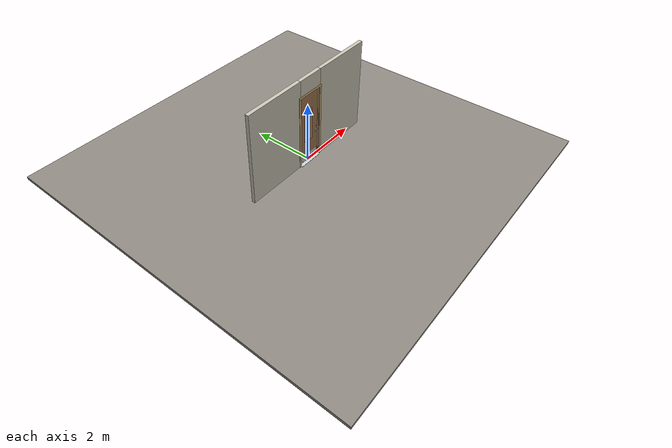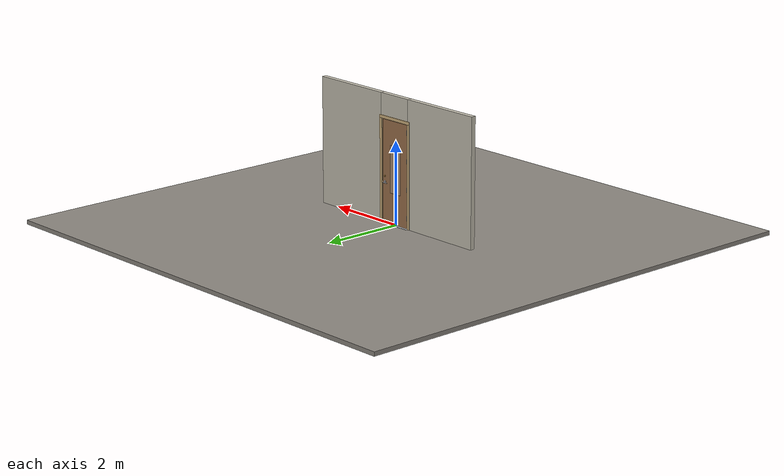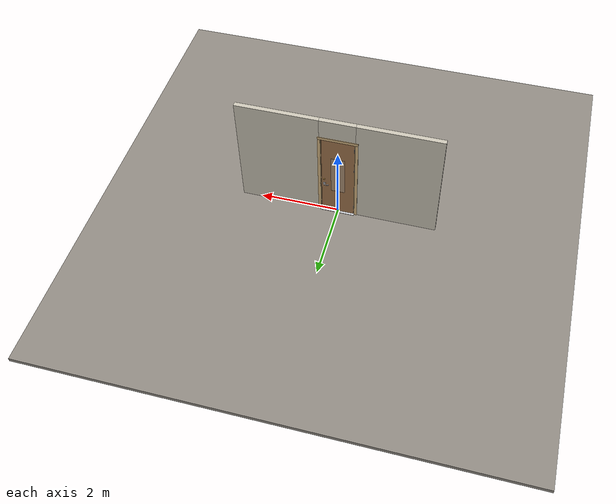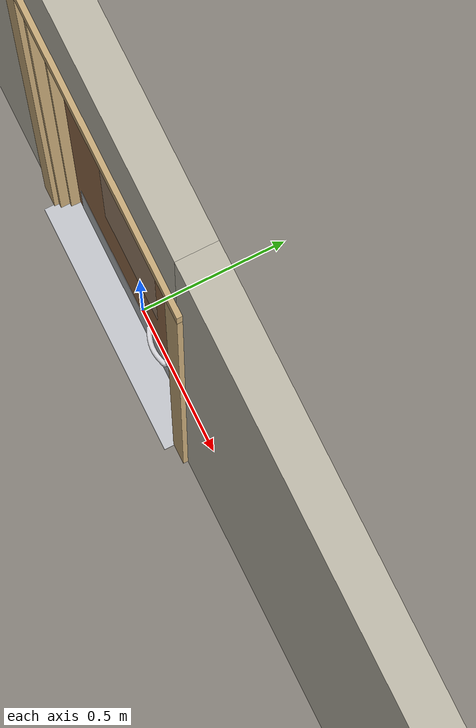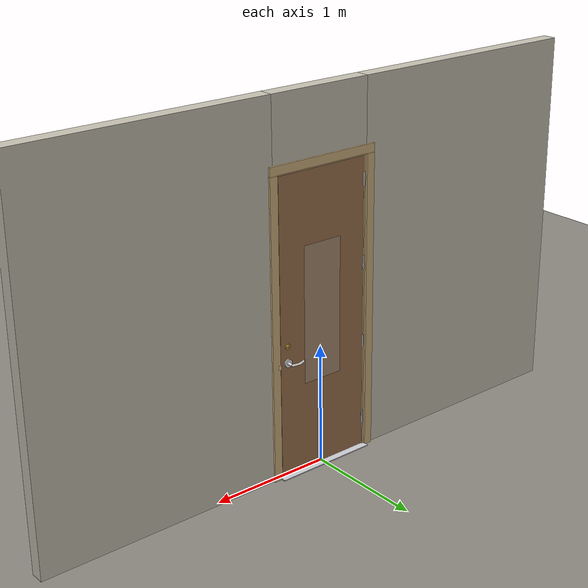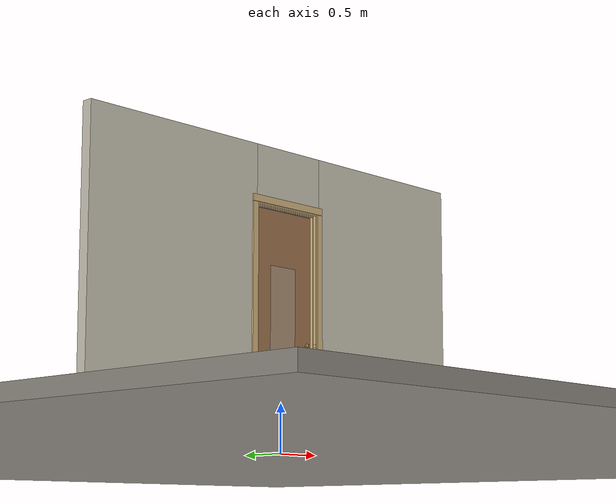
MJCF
<?xml version="1.0" ?>
<mujoco model="db0948_swing_single_full">
  <compiler angle="radian" meshdir="../../hardware" texturedir="../../textures" autolimits="true" inertiafromgeom="false"/>
  <option timestep="0.002" integrator="implicitfast" cone="elliptic" impratio="10" noslip_iterations="3">
    <flag multiccd="enable"/>
  </option>
  <size memory="16M"/>
  <default>
    <geom condim="4" solref="0.005 1" solimp="0.95 0.99 0.001"/>
    <joint solreflimit="0.005 1" solimplimit="0.95 0.99 0.001"/>
    <tendon solreflimit="0.005 1"/>
    <equality solref="0.002 1"/>
  </default>
  <visual>
    <headlight ambient="0.4 0.4 0.4" diffuse="0.7 0.7 0.7" specular="0.2 0.2 0.2"/>
    <quality shadowsize="4096"/>
    <map znear="0.01" zfar="60"/>
  </visual>
  <asset>
    <mesh name="cyl_face_e9e5036966" file="cyl_face_e9e5036966.obj"/>
    <mesh name="hinge_e22b26c0c1" file="hinge_e22b26c0c1.obj"/>
    <mesh name="hinge_jamb_e1d088f8dc" file="hinge_jamb_e1d088f8dc.obj"/>
    <mesh name="lever_748f08efca" file="lever_748f08efca.obj"/>
    <mesh name="thumbturn_eb5c9899a3" file="thumbturn_eb5c9899a3.obj"/>
    <material name="mat_floor" rgba="0.55 0.53 0.5 1" specular="0.2" shininess="0.15" reflectance="0"/>
    <material name="mat_wall" rgba="0.78 0.76 0.7 1" specular="0.2" shininess="0.1" reflectance="0"/>
    <material name="mat_leaf" rgba="0.62 0.45 0.3 1" specular="0.2" shininess="0.5" reflectance="0"/>
    <material name="mat_glass" rgba="0.85 0.92 0.95 0.25" specular="0.2" shininess="0.95" reflectance="0.1"/>
    <material name="mat_hinge" rgba="0.65 0.66 0.68 1" specular="0.74" shininess="0.5" reflectance="0.36"/>
    <material name="mat_op_chrome" rgba="0.9 0.9 0.92 1" specular="0.8" shininess="0.9" reflectance="0.4"/>
    <material name="mat_trim" rgba="0.85 0.66 0.3 1" specular="0.8" shininess="0.75" reflectance="0.4"/>
    <material name="mat_bolt" rgba="0.85 0.66 0.3 1" specular="0.8" shininess="0.75" reflectance="0.4"/>
    <material name="mat_deadbolt" rgba="0.85 0.66 0.3 1" specular="0.8" shininess="0.75" reflectance="0.4"/>
    <material name="mat_frame" rgba="0.82 0.7 0.5 1" specular="0.2" shininess="0.45" reflectance="0"/>
    <material name="mat_seal" rgba="0.1 0.1 0.1 1" specular="0.2" shininess="0.1" reflectance="0"/>
    <material name="mat_threshold" rgba="0.8 0.81 0.83 1" specular="0.8" shininess="0.6" reflectance="0.4"/>
    <material name="mat_kick" rgba="0.75 0.76 0.77 1" specular="0.8" shininess="0.65" reflectance="0.4"/>
    <texture name="skybox" type="skybox" builtin="gradient" rgb1="0.6 0.7 0.85" rgb2="0.9 0.92 0.95" width="256" height="256"/>
  </asset>
  <worldbody>
    <light name="sun" pos="1.5 -2.5 4" dir="-0.3 0.5 -0.8" directional="true" diffuse="0.8 0.8 0.8" specular="0.3 0.3 0.3" castshadow="true"/>
    <light name="fill" pos="-1.5 2.5 3" dir="0.3 -0.5 -0.7" directional="true" diffuse="0.35 0.35 0.4" castshadow="false"/>
    <camera name="robot_view" pos="0 -2.951313 2.043887" xyaxes="1 0 0 0 0.26963 0.962964" fovy="52"/>
    <camera name="far_view" pos="0 2.894312 2.043887" xyaxes="-1 0 0 0 -0.26963 0.962964" fovy="52"/>
    <camera name="iso" pos="2.221337 -2.483663 2.511538" xyaxes="0.741536 0.670913 0 -0.242917 0.268487 0.932151" fovy="46"/>
    <camera name="detail_handle" pos="0.4259 -0.877 1.245" xyaxes="0.97561 0.219512 0 -0.070934 0.315262 0.94635" fovy="38"/>
    <geom name="floor" type="box" size="6 6 0.05" pos="0 0 -0.05" material="mat_floor" group="0" contype="1" conaffinity="1" friction="0.8 0.005 0.0001" density="2400"/>
    <geom name="wall_left" type="box" size="1.03525 0.0575 1.5255" pos="-1.46475 -0.0285 1.5255" material="mat_wall" group="0" contype="1" conaffinity="1" friction="0.6 0.005 0.0001" density="800"/>
    <geom name="wall_right" type="box" size="1.02025 0.0575 1.5255" pos="1.47975 -0.0285 1.5255" material="mat_wall" group="0" contype="1" conaffinity="1" friction="0.6 0.005 0.0001" density="800"/>
    <geom name="wall_header" type="box" size="0.4445 0.0575 0.2755" pos="0.015 -0.0285 2.7755" material="mat_wall" group="0" contype="1" conaffinity="1" friction="0.6 0.005 0.0001" density="800"/>
    <geom name="hinge_0_jamb" type="mesh" mesh="hinge_jamb_e1d088f8dc" pos="-0.4075 0.029 0.259" quat="0 1 0 0" material="mat_hinge" group="1" contype="0" conaffinity="0" density="7850"/>
    <geom name="hinge_1_jamb" type="mesh" mesh="hinge_jamb_e1d088f8dc" pos="-0.4075 0.029 0.928333" quat="0 1 0 0" material="mat_hinge" group="1" contype="0" conaffinity="0" density="7850"/>
    <geom name="hinge_2_jamb" type="mesh" mesh="hinge_jamb_e1d088f8dc" pos="-0.4075 0.029 1.597667" quat="0 1 0 0" material="mat_hinge" group="1" contype="0" conaffinity="0" density="7850"/>
    <geom name="hinge_3_jamb" type="mesh" mesh="hinge_jamb_e1d088f8dc" pos="-0.4075 0.029 2.267" quat="0 1 0 0" material="mat_hinge" group="1" contype="0" conaffinity="0" density="7850"/>
    <geom name="leaf_deadbolt_strike_b" type="box" size="0.0155 0.003 0.0005" pos="0.41 0 1.0865" quat="-0.5 -0.5 0.5 0.5" material="mat_deadbolt" group="1" contype="0" conaffinity="0" density="7800"/>
    <geom name="leaf_deadbolt_strike_l" type="box" size="0.003 0.0155 0.0005" pos="0.41 0.0125 1.105" quat="-0.5 -0.5 0.5 0.5" material="mat_deadbolt" group="1" contype="0" conaffinity="0" density="7800"/>
    <geom name="leaf_deadbolt_strike_t" type="box" size="0.0155 0.003 0.0005" pos="0.41 0 1.1235" quat="-0.5 -0.5 0.5 0.5" material="mat_deadbolt" group="1" contype="0" conaffinity="0" density="7800"/>
    <geom name="leaf_deadbolt_strike_r" type="box" size="0.003 0.0155 0.0005" pos="0.41 -0.0125 1.105" quat="-0.5 -0.5 0.5 0.5" material="mat_deadbolt" group="1" contype="0" conaffinity="0" density="7800"/>
    <geom name="jamb_hinge" type="box" size="0.0095 0.0575 1.2255" pos="-0.42 -0.0285 1.2255" material="mat_frame" group="0" contype="1" conaffinity="1" friction="0.6 0.005 0.0001" density="400"/>
    <geom name="strike_965_wall_n" type="box" size="0.0245 0.039075 0.0167" pos="0.435 -0.046925 0.965" material="mat_frame" group="0" contype="1" conaffinity="1" friction="0.6 0.005 0.0001" density="400"/>
    <geom name="strike_965_wall_p" type="box" size="0.0245 0.008 0.0167" pos="0.435 0.01585 0.965" material="mat_frame" group="0" contype="1" conaffinity="1" friction="0.6 0.005 0.0001" density="400"/>
    <geom name="strike_965_ramp" type="box" size="0.0245 0.01649 0.0167" pos="0.439636 0.028673 0.965" quat="0.977148 0 0 -0.212558" material="mat_frame" group="0" contype="1" conaffinity="1" friction="0.12 0.005 0.0001" density="400"/>
    <geom name="strike_965_back" type="box" size="0.01615 0.00785 0.0167" pos="0.44335 0 0.965" material="mat_frame" group="0" contype="1" conaffinity="1" friction="0.6 0.005 0.0001" density="400"/>
    <geom name="strike_1105_wall_n" type="box" size="0.0245 0.03825 0.0155" pos="0.435 -0.04775 1.105" material="mat_frame" group="0" contype="1" conaffinity="1" friction="0.6 0.005 0.0001" density="400"/>
    <geom name="strike_1105_wall_p" type="box" size="0.0245 0.00975 0.0155" pos="0.435 0.01925 1.105" material="mat_frame" group="0" contype="1" conaffinity="1" friction="0.6 0.005 0.0001" density="400"/>
    <geom name="strike_1105_back" type="box" size="0.0098 0.0095 0.0155" pos="0.4497 0 1.105" material="mat_frame" group="0" contype="1" conaffinity="1" friction="0.6 0.005 0.0001" density="400"/>
    <geom name="jamb_strike_0" type="box" size="0.0245 0.0575 0.47415" pos="0.435 -0.0285 0.47415" material="mat_frame" group="0" contype="1" conaffinity="1" friction="0.6 0.005 0.0001" density="400"/>
    <geom name="jamb_strike_1" type="box" size="0.0245 0.0575 0.0539" pos="0.435 -0.0285 1.0356" material="mat_frame" group="0" contype="1" conaffinity="1" friction="0.6 0.005 0.0001" density="400"/>
    <geom name="jamb_strike_2" type="box" size="0.0245 0.0575 0.66525" pos="0.435 -0.0285 1.78575" material="mat_frame" group="0" contype="1" conaffinity="1" friction="0.6 0.005 0.0001" density="400"/>
    <geom name="jamb_head" type="box" size="0.4445 0.0575 0.0095" pos="0.015 -0.0285 2.4605" material="mat_frame" group="0" contype="1" conaffinity="1" friction="0.6 0.005 0.0001" density="400"/>
    <geom name="head_stud" type="box" size="0.4445 0.0575 0.015" pos="0.015 -0.0285 2.485" material="mat_wall" group="0" contype="1" conaffinity="1" friction="0.6 0.005 0.0001" density="500"/>
    <geom name="stop_hinge" type="box" size="0.0055 0.016 1.2255" pos="-0.405 -0.0385 1.2255" material="mat_frame" group="0" contype="1" conaffinity="1" friction="0.6 0.005 0.0001" density="400"/>
    <geom name="stop_strike" type="box" size="0.0055 0.016 1.2255" pos="0.405 -0.0385 1.2255" material="mat_frame" group="0" contype="1" conaffinity="1" friction="0.6 0.005 0.0001" density="400"/>
    <geom name="stop_head" type="box" size="0.4105 0.016 0.0055" pos="0 -0.0385 2.4455" material="mat_frame" group="0" contype="1" conaffinity="1" friction="0.6 0.005 0.0001" density="400"/>
    <geom name="seal_hinge" type="box" size="0.004 0.003 1.2255" pos="-0.4075 -0.025 1.2255" material="mat_seal" group="1" contype="0" conaffinity="0" density="1100"/>
    <geom name="seal_strike" type="box" size="0.004 0.003 1.2255" pos="0.4075 -0.025 1.2255" material="mat_seal" group="1" contype="0" conaffinity="0" density="1100"/>
    <geom name="seal_head" type="box" size="0.3905 0.003 0.008" pos="0 -0.025 2.439" material="mat_seal" group="1" contype="0" conaffinity="0" density="1100"/>
    <geom name="casing_l_n" type="box" size="0.035 0.008 1.235" pos="-0.4595 -0.094 1.2255" material="mat_frame" group="2" contype="0" conaffinity="0" density="400"/>
    <geom name="casing_r_n" type="box" size="0.035 0.008 1.235" pos="0.4595 -0.094 1.2255" material="mat_frame" group="2" contype="0" conaffinity="0" density="400"/>
    <geom name="casing_h_n" type="box" size="0.4945 0.008 0.035" pos="0 -0.094 2.5" material="mat_frame" group="2" contype="0" conaffinity="0" density="400"/>
    <geom name="casing_l_p" type="box" size="0.035 0.008 1.235" pos="-0.4595 0.037 1.2255" material="mat_frame" group="2" contype="0" conaffinity="0" density="400"/>
    <geom name="casing_r_p" type="box" size="0.035 0.008 1.235" pos="0.4595 0.037 1.2255" material="mat_frame" group="2" contype="0" conaffinity="0" density="400"/>
    <geom name="casing_h_p" type="box" size="0.4945 0.008 0.035" pos="0 0.037 2.5" material="mat_frame" group="2" contype="0" conaffinity="0" density="400"/>
    <geom name="threshold" type="box" size="0.4295 0.1075 0.004" pos="0 -0.0285 0.004" material="mat_threshold" group="0" contype="1" conaffinity="1" friction="0.6 0.005 0.0001" density="2700"/>
    <site name="approach_point" pos="0 -1.5 0" quat="1 0 0 0" size="0.05" rgba="0.2 0.9 0.2 0.5" group="4"/>
    <site name="goal_point" pos="0 1.5 0" quat="1 0 0 0" size="0.05" rgba="0.2 0.9 0.2 0.5" group="4"/>
    <site name="door_plane_center" pos="0 0 1.2255" quat="1 0 0 0" size="0.02" rgba="0.2 0.9 0.2 0.5" group="4"/>
    <body name="leaf" pos="-0.4105 0 0">
      <inertial pos="0.402926 -0.000648 1.179156" mass="57.306147" quat="0.500385 0.500373 0.498582 -0.500657" diaginertia="3.270067281 30.032979014 33.282040839"/>
      <joint name="leaf_hinge" type="hinge" axis="0 0 1" pos="0.003 0.029 0" limited="true" range="0 1.745329" solreflimit="0.02 1" damping="0.242359" frictionloss="3.136838" armature="0.02"/>
      <geom name="leaf_slab" type="box" size="0.4065 0.022 1.219" pos="0.4095 0 1.228" material="mat_leaf" group="0" contype="1" conaffinity="1" friction="0.4 0.005 0.0001" density="1"/>
      <geom name="leaf_glass_0" type="box" size="0.174075 0.0228 0.563178" pos="0.4095 0 1.303578" material="mat_glass" group="1" contype="0" conaffinity="0" density="1"/>
      <geom name="hinge_0" type="mesh" mesh="hinge_e22b26c0c1" pos="0.003 0.029 0.259" quat="0 1 0 0" material="mat_hinge" group="1" contype="0" conaffinity="0" density="7850"/>
      <geom name="hinge_1" type="mesh" mesh="hinge_e22b26c0c1" pos="0.003 0.029 0.928333" quat="0 1 0 0" material="mat_hinge" group="1" contype="0" conaffinity="0" density="7850"/>
      <geom name="hinge_2" type="mesh" mesh="hinge_e22b26c0c1" pos="0.003 0.029 1.597667" quat="0 1 0 0" material="mat_hinge" group="1" contype="0" conaffinity="0" density="7850"/>
      <geom name="hinge_3" type="mesh" mesh="hinge_e22b26c0c1" pos="0.003 0.029 2.267" quat="0 1 0 0" material="mat_hinge" group="1" contype="0" conaffinity="0" density="7850"/>
      <geom name="leaf_latch_bolt_faceplate" type="box" size="0.0006 0.01235 0.0267" pos="0.8154 0 0.965" material="mat_bolt" group="1" contype="0" conaffinity="0" density="8500"/>
      <geom name="leaf_deadbolt_faceplate" type="box" size="0.0006 0.014 0.0245" pos="0.8154 0 1.105" material="mat_deadbolt" group="1" contype="0" conaffinity="0" density="8500"/>
      <geom name="leaf_deadbolt_cylinder_face" type="mesh" mesh="cyl_face_e9e5036966" pos="0.751 0.022 1.105" quat="-0.707107 0.707107 0 0" material="mat_deadbolt" group="1" contype="0" conaffinity="0" density="7100"/>
      <geom name="kick_plate_n" type="box" size="0.3765 0.0008 0.125" pos="0.4095 -0.0228 0.144" material="mat_kick" group="2" contype="0" conaffinity="0" density="7900"/>
      <site name="leaf_edge_mid" pos="0.816 0 1.219" quat="1 0 0 0" size="0.02" rgba="0.2 0.9 0.2 0.5" group="4"/>
      <body name="leaf_handle" pos="0.746 0 0.965">
        <inertial pos="-0.024187 0 0" mass="0.847798" quat="0.707107 0 0 -0.707107" diaginertia="0.00118733 0.003222067 0.004272567"/>
        <joint name="leaf_handle_hinge" type="hinge" axis="0 -1 0" limited="true" range="0 0.87" damping="0.205085" frictionloss="0.04" stiffness="0.9" springref="-0.444444" armature="0.01"/>
        <geom name="leaf_handle_spindle" type="cylinder" size="0.006 0.03" pos="0 0 0" quat="0.707107 -0.707107 0 0" material="mat_op_chrome" group="1" contype="0" conaffinity="0" density="7850"/>
        <geom name="leaf_handle_lever_n" type="mesh" mesh="lever_748f08efca" pos="0 -0.022 0" quat="0.707107 0.707107 0 0" material="mat_op_chrome" group="1" contype="0" conaffinity="0" density="3000"/>
        <geom name="leaf_handle_lever_col_n" type="capsule" size="0.008 0.048" pos="-0.056 -0.077 0" quat="0.707107 0 -0.707107 0" material="mat_op_chrome" group="3" contype="1" conaffinity="1" rgba="0.8 0.3 0.3 0.25" friction="0.7 0.01 0.0001" density="3000"/>
        <geom name="leaf_handle_hub_col_n" type="cylinder" size="0.012 0.022" pos="0 -0.052 0" quat="0.707107 -0.707107 0 0" material="mat_op_chrome" group="3" contype="1" conaffinity="1" rgba="0.8 0.3 0.3 0.25" friction="0.6 0.005 0.0001" density="3000"/>
        <geom name="leaf_handle_lever_p" type="mesh" mesh="lever_748f08efca" pos="0 0.022 0" quat="-0.707107 0.707107 0 0" material="mat_op_chrome" group="1" contype="0" conaffinity="0" density="3000"/>
        <geom name="leaf_handle_lever_col_p" type="capsule" size="0.008 0.048" pos="-0.056 0.077 0" quat="0.707107 0 -0.707107 0" material="mat_op_chrome" group="3" contype="1" conaffinity="1" rgba="0.8 0.3 0.3 0.25" friction="0.7 0.01 0.0001" density="3000"/>
        <geom name="leaf_handle_hub_col_p" type="cylinder" size="0.012 0.022" pos="0 0.052 0" quat="0.707107 -0.707107 0 0" material="mat_op_chrome" group="3" contype="1" conaffinity="1" rgba="0.8 0.3 0.3 0.25" friction="0.6 0.005 0.0001" density="3000"/>
        <site name="leaf_handle_grip_n" pos="-0.0896 -0.077 0" quat="1 0 0 0" size="0.012" rgba="0.2 0.9 0.2 0.5" group="4"/>
        <site name="leaf_handle_grip_p" pos="-0.0896 0.077 0" quat="1 0 0 0" size="0.012" rgba="0.2 0.9 0.2 0.5" group="4"/>
      </body>
      <body name="leaf_latch_bolt" pos="0.816 0 0.965">
        <inertial pos="-0.00865 0 0" mass="0.041419" quat="0.92388 -0.382683 0 0" diaginertia="0.000000798 0.000005598 0.000005598"/>
        <joint name="leaf_latch_bolt_slide" type="slide" axis="-1 0 0" limited="true" range="0 0.0127" damping="2" frictionloss="0.3" stiffness="300" springref="-0.008333" armature="0.1"/>
        <geom name="leaf_latch_bolt_capsule" type="capsule" size="0.00635 0.015" pos="-0.00865 0 0" quat="0.707107 0 0.707107 0" material="mat_bolt" group="0" contype="1" conaffinity="1" friction="0.2 0.005 0.0001" density="8500"/>
      </body>
      <body name="leaf_deadbolt" pos="0.816 0 1.105">
        <inertial pos="-0.0023 0 0" mass="0.18836" quat="0 0 0.707107 0.707107" diaginertia="0.000013829 0.000052194 0.000057986"/>
        <joint name="leaf_deadbolt_slide" type="slide" axis="-1 0 0" limited="true" range="0 0.0254" damping="5" frictionloss="1.5" armature="0.1"/>
        <geom name="leaf_deadbolt_box" type="box" size="0.0277 0.008 0.0125" pos="-0.0023 0 0" material="mat_deadbolt" group="0" contype="1" conaffinity="1" friction="0.3 0.005 0.0001" density="8500"/>
      </body>
      <body name="leaf_deadbolt_thumbturn" pos="0.751 -0.022 1.105">
        <inertial pos="0 -0.012928 0" mass="0.178946" quat="0.5 0.5 0.5 0.5" diaginertia="0.000026045 0.000026215 0.000032438"/>
        <joint name="leaf_deadbolt_thumbturn_hinge" type="hinge" axis="0 1 0" limited="true" range="0 1.5708" damping="0.05" frictionloss="0.35" armature="0.005"/>
        <geom name="leaf_deadbolt_thumbturn_mesh" type="mesh" mesh="thumbturn_eb5c9899a3" pos="0 0 0" quat="0.707107 0.707107 0 0" material="mat_deadbolt" group="0" contype="1" conaffinity="1" friction="0.6 0.005 0.0001" density="7100"/>
        <geom name="leaf_deadbolt_thumbturn_col" type="box" size="0.006 0.012 0.016" pos="0 -0.02 0" material="mat_deadbolt" group="3" contype="1" conaffinity="1" rgba="0.8 0.3 0.3 0.25" friction="0.6 0.005 0.0001" density="7100"/>
      </body>
    </body>
  </worldbody>
  <tendon>
    <fixed name="leaf_latch_bolt_coupling" limited="true" range="0 10">
      <joint joint="leaf_latch_bolt_slide" coef="1"/>
      <joint joint="leaf_handle_hinge" coef="-0.016076"/>
    </fixed>
  </tendon>
  <equality>
    <joint name="leaf_deadbolt_couple" joint1="leaf_deadbolt_slide" joint2="leaf_deadbolt_thumbturn_hinge" polycoef="0 0.01617 0 0 0" active="true"/>
  </equality>
  <contact>
    <exclude body1="leaf_deadbolt" body2="leaf_deadbolt_thumbturn"/>
  </contact>
  <sensor>
    <jointpos name="leaf_hinge_pos" joint="leaf_hinge"/>
    <jointvel name="leaf_hinge_vel" joint="leaf_hinge"/>
    <jointpos name="leaf_handle_hinge_pos" joint="leaf_handle_hinge"/>
    <jointvel name="leaf_handle_hinge_vel" joint="leaf_handle_hinge"/>
    <jointpos name="leaf_latch_bolt_slide_pos" joint="leaf_latch_bolt_slide"/>
    <jointvel name="leaf_latch_bolt_slide_vel" joint="leaf_latch_bolt_slide"/>
    <jointpos name="leaf_deadbolt_slide_pos" joint="leaf_deadbolt_slide"/>
    <jointvel name="leaf_deadbolt_slide_vel" joint="leaf_deadbolt_slide"/>
    <jointpos name="leaf_deadbolt_thumbturn_hinge_pos" joint="leaf_deadbolt_thumbturn_hinge"/>
    <jointvel name="leaf_deadbolt_thumbturn_hinge_vel" joint="leaf_deadbolt_thumbturn_hinge"/>
  </sensor>
</mujoco>
